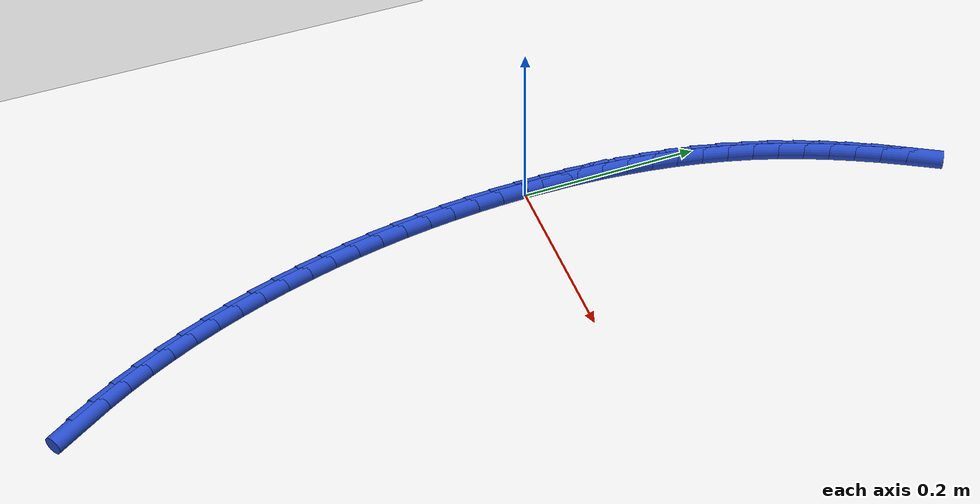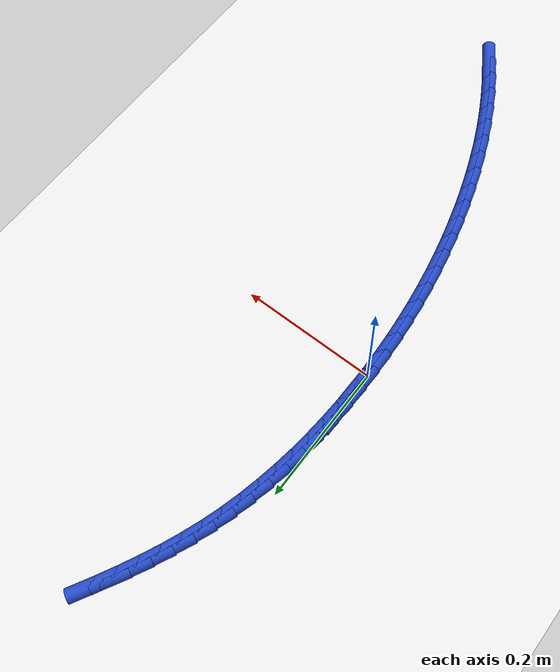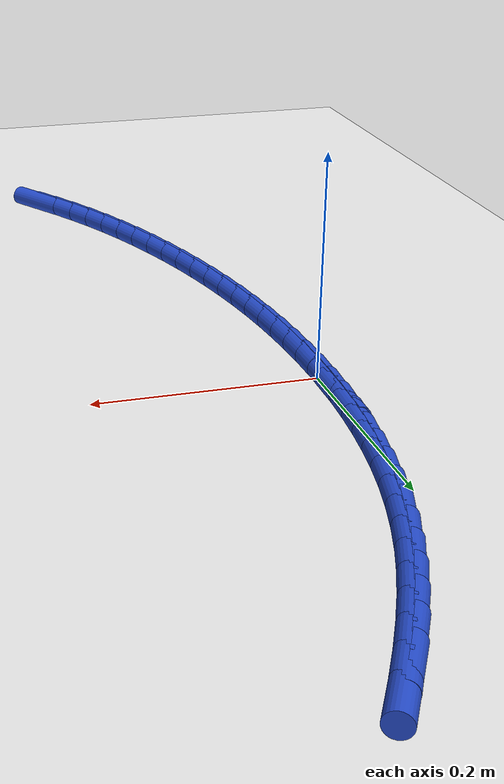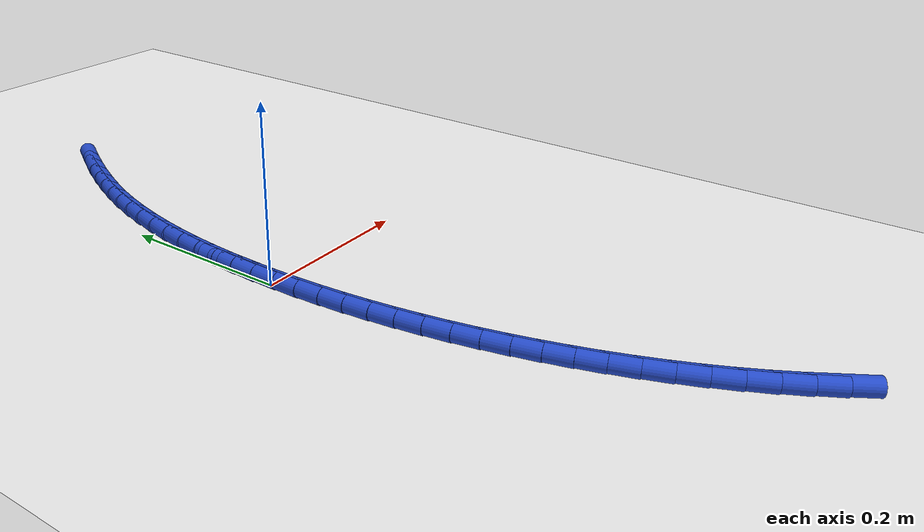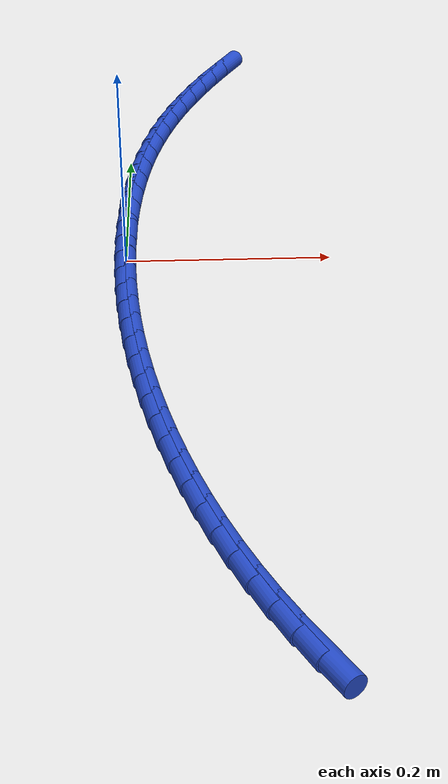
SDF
<sdf version="1.6">
 <world name="default">
  <model name="ground_plane">
   <static>1</static>
   <link name="link">
    <collision name="collision">
     <geometry><plane><normal>0 0 1</normal><size>100 100</size></plane></geometry>
     <surface><friction><ode><mu>100</mu><mu2>50</mu2></ode></friction></surface>
    </collision>
    <visual name="visual">
     <cast_shadows>0</cast_shadows>
     <geometry><plane><normal>0 0 1</normal><size>100 100</size></plane></geometry>
     <material>
      <script><uri>file://media/materials/scripts/gazebo.material</uri><name>Gazebo/WhiteGlow</name></script>
     </material>
    </visual>
   </link>
  </model>
  <model name="line">
   <link name="link_0">
    <pose>1.3010426069826053e-18 -2.7755575615628914e-17 0.01 0 1.57 1.5690759553650164</pose>
    <collision name="collision">
     <geometry><cylinder><radius>0.01</radius><length>0.08</length></cylinder></geometry>
    </collision>
    <visual name="visual">
     <material>
      <script><name>Gazebo/Blue</name><uri>file://media/materials/scripts/gazebo.material</uri></script>
     </material>
     <geometry><cylinder><radius>0.01</radius><length>0.08</length></cylinder></geometry>
    </visual>
   </link>
   <link name="link_1">
    <pose>5.004974957747852e-05 0.0290923804773428 0.01 0 1.57 1.5415738174035163</pose>
    <collision name="collision">
     <geometry><cylinder><radius>0.01</radius><length>0.08</length></cylinder></geometry>
    </collision>
    <visual name="visual">
     <material>
      <script><name>Gazebo/Blue</name><uri>file://media/materials/scripts/gazebo.material</uri></script>
     </material>
     <geometry><cylinder><radius>0.01</radius><length>0.08</length></cylinder></geometry>
    </visual>
   </link>
   <link name="link_2">
    <pose>0.0009011808145705457 0.05820996117211494 0.01 0 1.57 1.5124217109604914</pose>
    <collision name="collision">
     <geometry><cylinder><radius>0.01</radius><length>0.08</length></cylinder></geometry>
    </collision>
    <visual name="visual">
     <material>
      <script><name>Gazebo/Blue</name><uri>file://media/materials/scripts/gazebo.material</uri></script>
     </material>
     <geometry><cylinder><radius>0.01</radius><length>0.08</length></cylinder></geometry>
    </visual>
   </link>
   <link name="link_3">
    <pose>0.0026008422577431262 0.08729332889628968 0.01 0 1.57 1.4814979170119669</pose>
    <collision name="collision">
     <geometry><cylinder><radius>0.01</radius><length>0.08</length></cylinder></geometry>
    </collision>
    <visual name="visual">
     <material>
      <script><name>Gazebo/Blue</name><uri>file://media/materials/scripts/gazebo.material</uri></script>
     </material>
     <geometry><cylinder><radius>0.01</radius><length>0.08</length></cylinder></geometry>
    </visual>
   </link>
   <link name="link_4">
    <pose>0.005196483141859143 0.11628307046184042 0.01 0 1.57 1.4486790482895981</pose>
    <collision name="collision">
     <geometry><cylinder><radius>0.01</radius><length>0.08</length></cylinder></geometry>
    </collision>
    <visual name="visual">
     <material>
      <script><name>Gazebo/Blue</name><uri>file://media/materials/scripts/gazebo.material</uri></script>
     </material>
     <geometry><cylinder><radius>0.01</radius><length>0.08</length></cylinder></geometry>
    </visual>
   </link>
   <link name="link_5">
    <pose>0.00873555252968252 0.14511977268074042 0.01 0 1.57 1.4138424131011929</pose>
    <collision name="collision">
     <geometry><cylinder><radius>0.01</radius><length>0.08</length></cylinder></geometry>
    </collision>
    <visual name="visual">
     <material>
      <script><name>Gazebo/Blue</name><uri>file://media/materials/scripts/gazebo.material</uri></script>
     </material>
     <geometry><cylinder><radius>0.01</radius><length>0.08</length></cylinder></geometry>
    </visual>
   </link>
   <link name="link_6">
    <pose>0.013265499483977186 0.17374402236496306 0.01 0 1.57 1.3768692616429017</pose>
    <collision name="collision">
     <geometry><cylinder><radius>0.01</radius><length>0.08</length></cylinder></geometry>
    </collision>
    <visual name="visual">
     <material>
      <script><name>Gazebo/Blue</name><uri>file://media/materials/scripts/gazebo.material</uri></script>
     </material>
     <geometry><cylinder><radius>0.01</radius><length>0.08</length></cylinder></geometry>
    </visual>
   </link>
   <link name="link_7">
    <pose>0.018833773067507057 0.20209640632648157 0.01 0 1.57 1.337649064226488</pose>
    <collision name="collision">
     <geometry><cylinder><radius>0.01</radius><length>0.08</length></cylinder></geometry>
    </collision>
    <visual name="visual">
     <material>
      <script><name>Gazebo/Blue</name><uri>file://media/materials/scripts/gazebo.material</uri></script>
     </material>
     <geometry><cylinder><radius>0.01</radius><length>0.08</length></cylinder></geometry>
    </visual>
   </link>
   <link name="link_8">
    <pose>0.025487822343036072 0.23011751137726943 0.01 0 1.57 1.296084943133296</pose>
    <collision name="collision">
     <geometry><cylinder><radius>0.01</radius><length>0.08</length></cylinder></geometry>
    </collision>
    <visual name="visual">
     <material>
      <script><name>Gazebo/Blue</name><uri>file://media/materials/scripts/gazebo.material</uri></script>
     </material>
     <geometry><cylinder><radius>0.01</radius><length>0.08</length></cylinder></geometry>
    </visual>
   </link>
   <link name="link_9">
    <pose>0.033275096373328136 0.25774792432929977 0.01 0 1.57 1.2522746346578566</pose>
    <collision name="collision">
     <geometry><cylinder><radius>0.01</radius><length>0.08</length></cylinder></geometry>
    </collision>
    <visual name="visual">
     <material>
      <script><name>Gazebo/Blue</name><uri>file://media/materials/scripts/gazebo.material</uri></script>
     </material>
     <geometry><cylinder><radius>0.01</radius><length>0.08</length></cylinder></geometry>
    </visual>
   </link>
   <link name="link_10">
    <pose>0.04223876512189171 0.28493118707589205 0.01 0 1.57 1.2093062880424952</pose>
    <collision name="collision">
     <geometry><cylinder><radius>0.01</radius><length>0.08</length></cylinder></geometry>
    </collision>
    <visual name="visual">
     <material>
      <script><name>Gazebo/Blue</name><uri>file://media/materials/scripts/gazebo.material</uri></script>
     </material>
     <geometry><cylinder><radius>0.01</radius><length>0.08</length></cylinder></geometry>
    </visual>
   </link>
   <link name="link_11">
    <pose>0.052346252854807825 0.31166315034550857 0.01 0 1.57 1.1699816997680739</pose>
    <collision name="collision">
     <geometry><cylinder><radius>0.01</radius><length>0.08</length></cylinder></geometry>
    </collision>
    <visual name="visual">
     <material>
      <script><name>Gazebo/Blue</name><uri>file://media/materials/scripts/gazebo.material</uri></script>
     </material>
     <geometry><cylinder><radius>0.01</radius><length>0.08</length></cylinder></geometry>
    </visual>
   </link>
   <link name="link_12">
    <pose>0.06350003275044186 0.33798451910724875 0.01 0 1.57 1.1345149713321698</pose>
    <collision name="collision">
     <geometry><cylinder><radius>0.01</radius><length>0.08</length></cylinder></geometry>
    </collision>
    <visual name="visual">
     <material>
      <script><name>Gazebo/Blue</name><uri>file://media/materials/scripts/gazebo.material</uri></script>
     </material>
     <geometry><cylinder><radius>0.01</radius><length>0.08</length></cylinder></geometry>
    </visual>
   </link>
   <link name="link_13">
    <pose>0.07560047382017349 0.36393745143616657 0.01 0 1.57 1.1029698436291127</pose>
    <collision name="collision">
     <geometry><cylinder><radius>0.01</radius><length>0.08</length></cylinder></geometry>
    </collision>
    <visual name="visual">
     <material>
      <script><name>Gazebo/Blue</name><uri>file://media/materials/scripts/gazebo.material</uri></script>
     </material>
     <geometry><cylinder><radius>0.01</radius><length>0.08</length></cylinder></geometry>
    </visual>
   </link>
   <link name="link_14">
    <pose>0.08854794507538247 0.3895641054073162 0.01 0 1.57 1.0753605912306716</pose>
    <collision name="collision">
     <geometry><cylinder><radius>0.01</radius><length>0.08</length></cylinder></geometry>
    </collision>
    <visual name="visual">
     <material>
      <script><name>Gazebo/Blue</name><uri>file://media/materials/scripts/gazebo.material</uri></script>
     </material>
     <geometry><cylinder><radius>0.01</radius><length>0.08</length></cylinder></geometry>
    </visual>
   </link>
   <link name="link_15">
    <pose>0.10224281552744846 0.414906639095752 0.01 0 1.57 1.0516665819928384</pose>
    <collision name="collision">
     <geometry><cylinder><radius>0.01</radius><length>0.08</length></cylinder></geometry>
    </collision>
    <visual name="visual">
     <material>
      <script><name>Gazebo/Blue</name><uri>file://media/materials/scripts/gazebo.material</uri></script>
     </material>
     <geometry><cylinder><radius>0.01</radius><length>0.08</length></cylinder></geometry>
    </visual>
   </link>
   <link name="link_211">
    <pose>0.14743579689967581 -0.5224055446815402 0.01 0 1.57 -1.0071477345496305</pose>
    <collision name="collision">
     <geometry><cylinder><radius>0.01</radius><length>0.08</length></cylinder></geometry>
    </collision>
    <visual name="visual">
     <material>
      <script><name>Gazebo/Blue</name><uri>file://media/materials/scripts/gazebo.material</uri></script>
     </material>
     <geometry><cylinder><radius>0.01</radius><length>0.08</length></cylinder></geometry>
    </visual>
   </link>
   <link name="link_212">
    <pose>0.1320972913923292 -0.49813744472622606 0.01 0 1.57 -1.046738473608482</pose>
    <collision name="collision">
     <geometry><cylinder><radius>0.01</radius><length>0.08</length></cylinder></geometry>
    </collision>
    <visual name="visual">
     <material>
      <script><name>Gazebo/Blue</name><uri>file://media/materials/scripts/gazebo.material</uri></script>
     </material>
     <geometry><cylinder><radius>0.01</radius><length>0.08</length></cylinder></geometry>
    </visual>
   </link>
   <link name="link_213">
    <pose>0.11769134968117831 -0.47321205451549636 0.01 0 1.57 -1.0845104315279541</pose>
    <collision name="collision">
     <geometry><cylinder><radius>0.01</radius><length>0.08</length></cylinder></geometry>
    </collision>
    <visual name="visual">
     <material>
      <script><name>Gazebo/Blue</name><uri>file://media/materials/scripts/gazebo.material</uri></script>
     </material>
     <geometry><cylinder><radius>0.01</radius><length>0.08</length></cylinder></geometry>
    </visual>
   </link>
   <link name="link_214">
    <pose>0.10419972700553713 -0.44769003555402864 0.01 0 1.57 -1.1205428898527645</pose>
    <collision name="collision">
     <geometry><cylinder><radius>0.01</radius><length>0.08</length></cylinder></geometry>
    </collision>
    <visual name="visual">
     <material>
      <script><name>Gazebo/Blue</name><uri>file://media/materials/scripts/gazebo.material</uri></script>
     </material>
     <geometry><cylinder><radius>0.01</radius><length>0.08</length></cylinder></geometry>
    </visual>
   </link>
   <link name="link_215">
    <pose>0.091604153782305 -0.421632080529561 0.01 0 1.57 -1.1549266451204743</pose>
    <collision name="collision">
     <geometry><cylinder><radius>0.01</radius><length>0.08</length></cylinder></geometry>
    </collision>
    <visual name="visual">
     <material>
      <script><name>Gazebo/Blue</name><uri>file://media/materials/scripts/gazebo.material</uri></script>
     </material>
     <geometry><cylinder><radius>0.01</radius><length>0.08</length></cylinder></geometry>
    </visual>
   </link>
   <link name="link_216">
    <pose>0.0798863604283822 -0.39509888212983396 0.01 0 1.57 -1.187759410354755</pose>
    <collision name="collision">
     <geometry><cylinder><radius>0.01</radius><length>0.08</length></cylinder></geometry>
    </collision>
    <visual name="visual">
     <material>
      <script><name>Gazebo/Blue</name><uri>file://media/materials/scripts/gazebo.material</uri></script>
     </material>
     <geometry><cylinder><radius>0.01</radius><length>0.08</length></cylinder></geometry>
    </visual>
   </link>
   <link name="link_217">
    <pose>0.06902807736066796 -0.3681511330425855 0.01 0 1.57 -1.2191431970779276</pose>
    <collision name="collision">
     <geometry><cylinder><radius>0.01</radius><length>0.08</length></cylinder></geometry>
    </collision>
    <visual name="visual">
     <material>
      <script><name>Gazebo/Blue</name><uri>file://media/materials/scripts/gazebo.material</uri></script>
     </material>
     <geometry><cylinder><radius>0.01</radius><length>0.08</length></cylinder></geometry>
    </visual>
   </link>
   <link name="link_218">
    <pose>0.05901103499606191 -0.3408495259555544 0.01 0 1.57 -1.2491823117029173</pose>
    <collision name="collision">
     <geometry><cylinder><radius>0.01</radius><length>0.08</length></cylinder></geometry>
    </collision>
    <visual name="visual">
     <material>
      <script><name>Gazebo/Blue</name><uri>file://media/materials/scripts/gazebo.material</uri></script>
     </material>
     <geometry><cylinder><radius>0.01</radius><length>0.08</length></cylinder></geometry>
    </visual>
   </link>
   <link name="link_219">
    <pose>0.049816963751463474 -0.3132547535564792 0.01 0 1.57 -1.277981896559513</pose>
    <collision name="collision">
     <geometry><cylinder><radius>0.01</radius><length>0.08</length></cylinder></geometry>
    </collision>
    <visual name="visual">
     <material>
      <script><name>Gazebo/Blue</name><uri>file://media/materials/scripts/gazebo.material</uri></script>
     </material>
     <geometry><cylinder><radius>0.01</radius><length>0.08</length></cylinder></geometry>
    </visual>
   </link>
   <link name="link_220">
    <pose>0.0414275940437727 -0.28542750853309984 0.01 0 1.57 -1.305661611350143</pose>
    <collision name="collision">
     <geometry><cylinder><radius>0.01</radius><length>0.08</length></cylinder></geometry>
    </collision>
    <visual name="visual">
     <material>
      <script><name>Gazebo/Blue</name><uri>file://media/materials/scripts/gazebo.material</uri></script>
     </material>
     <geometry><cylinder><radius>0.01</radius><length>0.08</length></cylinder></geometry>
    </visual>
   </link>
   <link name="link_221">
    <pose>0.03382488342967684 -0.257427695972735 0.01 0 1.57 -1.3327575420967903</pose>
    <collision name="collision">
     <geometry><cylinder><radius>0.01</radius><length>0.08</length></cylinder></geometry>
    </collision>
    <visual name="visual">
     <material>
      <script><name>Gazebo/Blue</name><uri>file://media/materials/scripts/gazebo.material</uri></script>
     </material>
     <geometry><cylinder><radius>0.01</radius><length>0.08</length></cylinder></geometry>
    </visual>
   </link>
   <link name="link_222">
    <pose>0.026997800780262704 -0.22929090943975924 0.01 0 1.57 -1.3597977698883226</pose>
    <collision name="collision">
     <geometry><cylinder><radius>0.01</radius><length>0.08</length></cylinder></geometry>
    </collision>
    <visual name="visual">
     <material>
      <script><name>Gazebo/Blue</name><uri>file://media/materials/scripts/gazebo.material</uri></script>
     </material>
     <geometry><cylinder><radius>0.01</radius><length>0.08</length></cylinder></geometry>
    </visual>
   </link>
   <link name="link_223">
    <pose>0.02094349153328795 -0.20102439049820778 0.01 0 1.57 -1.3867863392272095</pose>
    <collision name="collision">
     <geometry><cylinder><radius>0.01</radius><length>0.08</length></cylinder></geometry>
    </collision>
    <visual name="visual">
     <material>
      <script><name>Gazebo/Blue</name><uri>file://media/materials/scripts/gazebo.material</uri></script>
     </material>
     <geometry><cylinder><radius>0.01</radius><length>0.08</length></cylinder></geometry>
    </visual>
   </link>
   <link name="link_224">
    <pose>0.01565956304502941 -0.17263377902347182 0.01 0 1.57 -1.4136979355444377</pose>
    <collision name="collision">
     <geometry><cylinder><radius>0.01</radius><length>0.08</length></cylinder></geometry>
    </collision>
    <visual name="visual">
     <material>
      <script><name>Gazebo/Blue</name><uri>file://media/materials/scripts/gazebo.material</uri></script>
     </material>
     <geometry><cylinder><radius>0.01</radius><length>0.08</length></cylinder></geometry>
    </visual>
   </link>
   <link name="link_225">
    <pose>0.011143622671763425 -0.1441247148909405 0.01 0 1.57 -1.4405078744822581</pose>
    <collision name="collision">
     <geometry><cylinder><radius>0.01</radius><length>0.08</length></cylinder></geometry>
    </collision>
    <visual name="visual">
     <material>
      <script><name>Gazebo/Blue</name><uri>file://media/materials/scripts/gazebo.material</uri></script>
     </material>
     <geometry><cylinder><radius>0.01</radius><length>0.08</length></cylinder></geometry>
    </visual>
   </link>
   <link name="link_226">
    <pose>0.007393277769766522 -0.11550283797600383 0.01 0 1.57 -1.4671922522578262</pose>
    <collision name="collision">
     <geometry><cylinder><radius>0.01</radius><length>0.08</length></cylinder></geometry>
    </collision>
    <visual name="visual">
     <material>
      <script><name>Gazebo/Blue</name><uri>file://media/materials/scripts/gazebo.material</uri></script>
     </material>
     <geometry><cylinder><radius>0.01</radius><length>0.08</length></cylinder></geometry>
    </visual>
   </link>
   <link name="link_227">
    <pose>0.004406135695315215 -0.08677378815405166 0.01 0 1.57 -1.4937280837058644</pose>
    <collision name="collision">
     <geometry><cylinder><radius>0.01</radius><length>0.08</length></cylinder></geometry>
    </collision>
    <visual name="visual">
     <material>
      <script><name>Gazebo/Blue</name><uri>file://media/materials/scripts/gazebo.material</uri></script>
     </material>
     <geometry><cylinder><radius>0.01</radius><length>0.08</length></cylinder></geometry>
    </visual>
   </link>
   <link name="link_228">
    <pose>0.0021798038046859677 -0.05794320530047306 0.01 0 1.57 -1.5200934261919066</pose>
    <collision name="collision">
     <geometry><cylinder><radius>0.01</radius><length>0.08</length></cylinder></geometry>
    </collision>
    <visual name="visual">
     <material>
      <script><name>Gazebo/Blue</name><uri>file://media/materials/scripts/gazebo.material</uri></script>
     </material>
     <geometry><cylinder><radius>0.01</radius><length>0.08</length></cylinder></geometry>
    </visual>
   </link>
   <link name="link_229">
    <pose>0.000711889454155411 -0.02901672929065946 0.01 0 1.57 -1.5462674879804879</pose>
    <collision name="collision">
     <geometry><cylinder><radius>0.01</radius><length>0.08</length></cylinder></geometry>
    </collision>
    <visual name="visual">
     <material>
      <script><name>Gazebo/Blue</name><uri>file://media/materials/scripts/gazebo.material</uri></script>
     </material>
     <geometry><cylinder><radius>0.01</radius><length>0.08</length></cylinder></geometry>
    </visual>
   </link>
   <link name="link_230">
    <pose>-3.469446951953614e-18 -6.938893903907228e-18 0.01 0 1.57 1.569361933533261</pose>
    <collision name="collision">
     <geometry><cylinder><radius>0.01</radius><length>0.08</length></cylinder></geometry>
    </collision>
    <visual name="visual">
     <material>
      <script><name>Gazebo/Blue</name><uri>file://media/materials/scripts/gazebo.material</uri></script>
     </material>
     <geometry><cylinder><radius>0.01</radius><length>0.08</length></cylinder></geometry>
    </visual>
   </link>
   <link name="link_231">
    <pose>4.1742798496237875e-05 0.029101342696115452 0.01 0 1.57 1.543627762773429</pose>
    <collision name="collision">
     <geometry><cylinder><radius>0.01</radius><length>0.08</length></cylinder></geometry>
    </collision>
    <visual name="visual">
     <material>
      <script><name>Gazebo/Blue</name><uri>file://media/materials/scripts/gazebo.material</uri></script>
     </material>
     <geometry><cylinder><radius>0.01</radius><length>0.08</length></cylinder></geometry>
    </visual>
   </link>
   <link name="link_232">
    <pose>0.0008347252059206492 0.05828165892229701 0.01 0 1.57 1.5564750436771717</pose>
    <collision name="collision">
     <geometry><cylinder><radius>0.01</radius><length>0.08</length></cylinder></geometry>
    </collision>
    <visual name="visual">
     <material>
      <script><name>Gazebo/Blue</name><uri>file://media/materials/scripts/gazebo.material</uri></script>
     </material>
     <geometry><cylinder><radius>0.01</radius><length>0.08</length></cylinder></geometry>
    </visual>
   </link>
  </model>
 </world>
</sdf>
